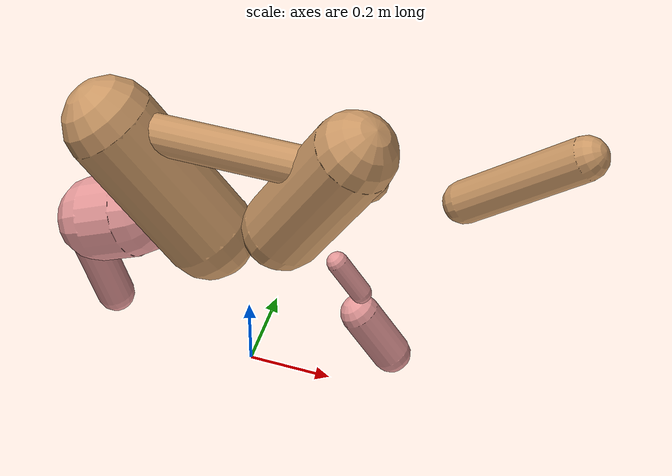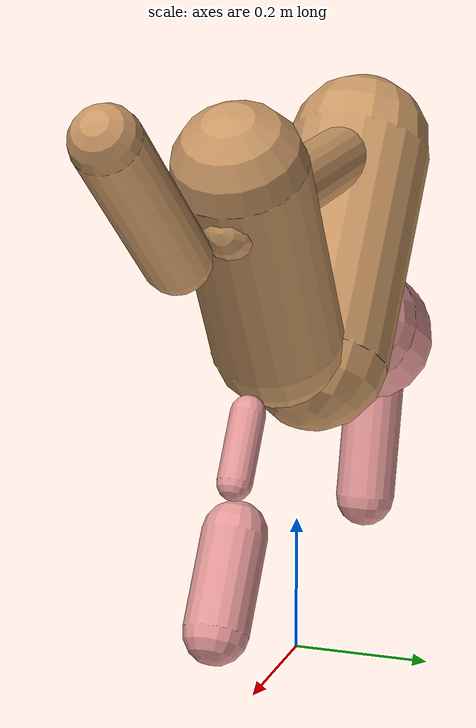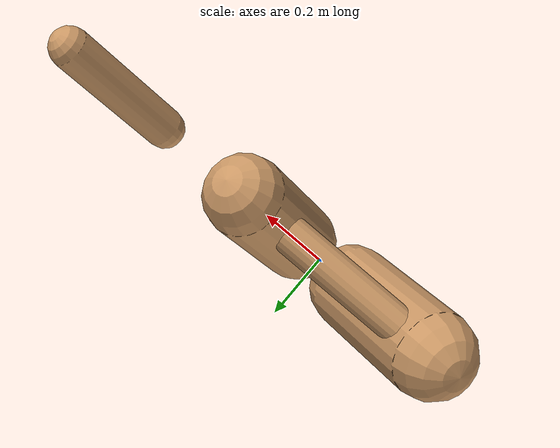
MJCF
<mujoco model="cheetah">
  <compiler angle="radian" coordinate="local" inertiafromgeom="true" settotalmass="14" />
  <default>
    <joint armature=".1" damping=".01" limited="true" solimplimit="0 .8 .03" solreflimit=".02 1" stiffness="8" />
    <geom conaffinity="0" condim="3" contype="1" friction="0.8 .1 .1" rgba="0.8 0.6 .4 1" solimp="0.0 0.8 0.01" solref="0.02 1" />
    <motor ctrllimited="true" ctrlrange="-1 1" />
  </default>
  <size nstack="300000" nuser_geom="1" />
  <option gravity="0 0 -9.81" timestep="0.01" />
  <worldbody>
    <body name="torso" pos="0 0 .7">
      <joint armature="0" axis="1 0 0" damping="0" limited="false" name="ignorex" pos="0 0 0" stiffness="0" type="slide" />
      <joint armature="0" axis="0 0 1" damping="0" limited="false" name="ignorez" pos="0 0 0" stiffness="0" type="slide" />
      <joint armature="0" axis="0 1 0" damping="0" limited="false" name="ignorey" pos="0 0 0" stiffness="0" type="hinge" />
      <geom fromto="-0.284 0 0 0.277 0 0" name="torso" size="0.046" type="capsule" />
      <geom axisangle="0 1 0 .87" name="head" pos=".6 0 .1" size="0.046 .15" type="capsule" />

      <body name="bthigh" pos="-0.284 0 0">
        <joint axis="0 1 0" damping="6" name="bthigh" pos="0 0 0" range="-.52 1.05" stiffness="240" type="hinge" />
        <geom axisangle="0 1 0 -3.8" name="bthigh" pos="0.0864 0.0 -0.14" size="0.108 0.176" type="capsule" />
        <body name="bshin" pos=".16 0 -.25">
          <joint axis="0 1 0" damping="4.5" name="bshin" pos="0 0 0" range="-.785 .785" stiffness="180" type="hinge" />
          <geom axisangle="0 1 0 -2.03" name="bshin" pos="-0.194 0.0 -0.0438" rgba="0.9 0.6 0.6 1" size="0.101 0.0485" type="capsule" />
          <body name="bfoot" pos="-.28 0 -.14">
            <joint axis="0 1 0" damping="3" name="bfoot" pos="0 0 0" range="-.4 .785" stiffness="120" type="hinge" />
            <geom axisangle="0 1 0 -.27" name="bfoot" pos=".03 0 -.097" rgba="0.9 0.6 0.6 1" size="0.046 .094" type="capsule" />
            <inertial mass="10" />
          </body>
        </body>
      </body>
      <body name="fthigh" pos="0.277 0 0">
        <joint axis="0 1 0" damping="4.5" name="fthigh" pos="0 0 0" range="-1.5 0.8" stiffness="180" type="hinge" />
        <geom axisangle="0 1 0 .52" name="fthigh" pos="-0.109 0.0 -0.0688" size="0.0953 0.158" type="capsule" />
        <body name="fshin" pos="-.14 0 -.24">
          <joint axis="0 1 0" damping="3" name="fshin" pos="0 0 0" range="-1.2 1.1" stiffness="120" type="hinge" />
          <geom axisangle="0 1 0 -.6" name="fshin" pos="0.107 0.0 -0.0778" rgba="0.9 0.6 0.6 1" size="0.0249 0.0507" type="capsule" />
          <body name="ffoot" pos=".13 0 -.18">
            <joint axis="0 1 0" damping="1.5" name="ffoot" pos="0 0 0" range="-3.1 -0.3" stiffness="60" type="hinge" />
            <geom axisangle="0 1 0 -.6" name="ffoot" pos=".045 0 -.07" rgba="0.9 0.6 0.6 1" size="0.046 .07" type="capsule" />
            <inertial mass="10" />
          </body>
        </body>
      </body>
    </body>
  </worldbody>
  <actuator>
    <motor gear="120" joint="bthigh" name="bthigh" />
    <motor gear="90" joint="bshin" name="bshin" />
    <motor gear="60" joint="bfoot" name="bfoot" />
    <motor gear="120" joint="fthigh" name="fthigh" />
    <motor gear="60" joint="fshin" name="fshin" />
    <motor gear="30" joint="ffoot" name="ffoot" />
  </actuator>
</mujoco>
